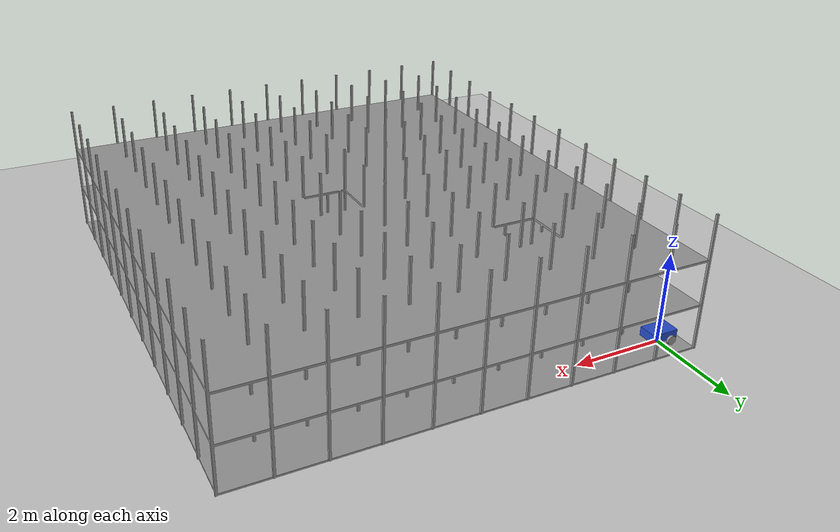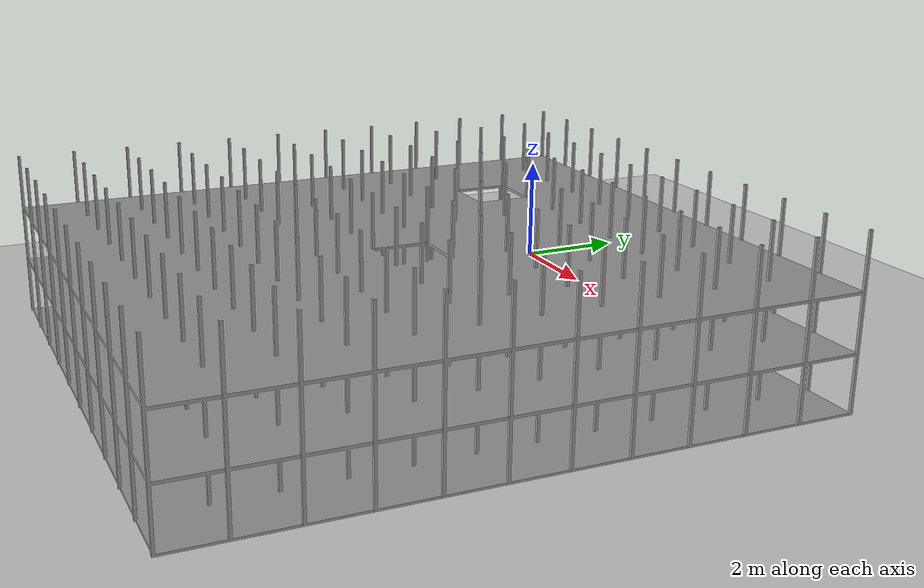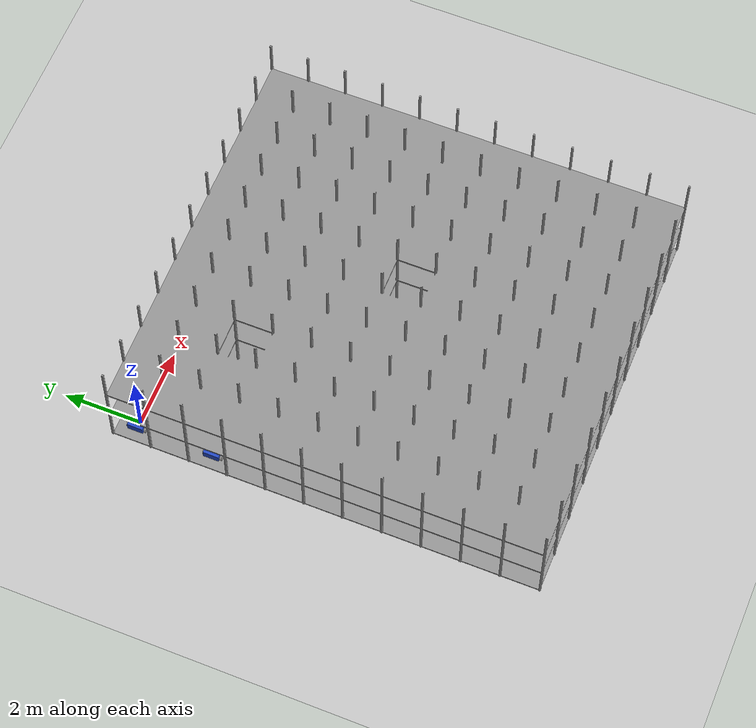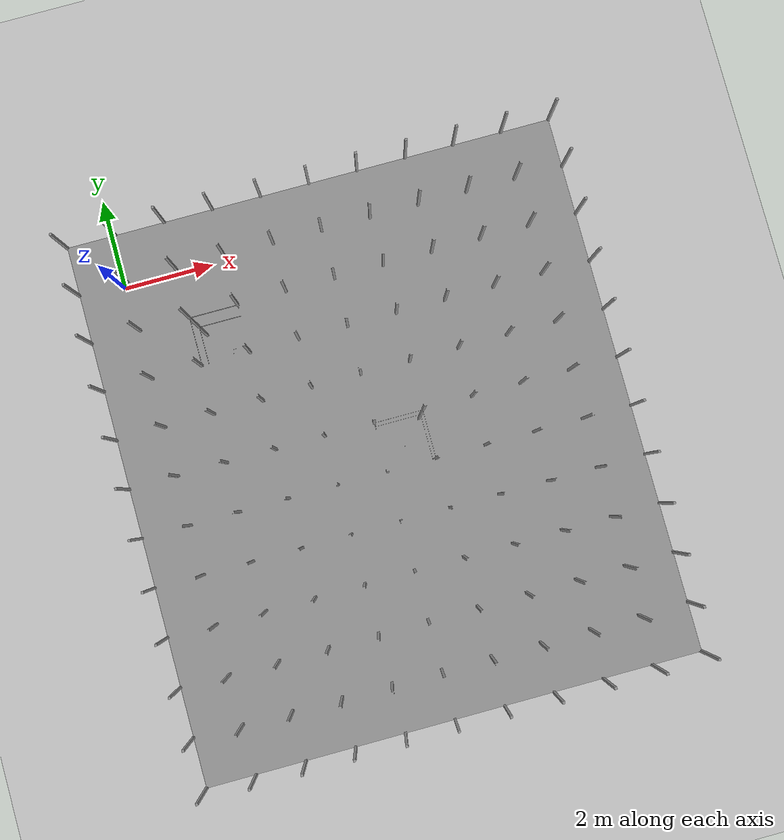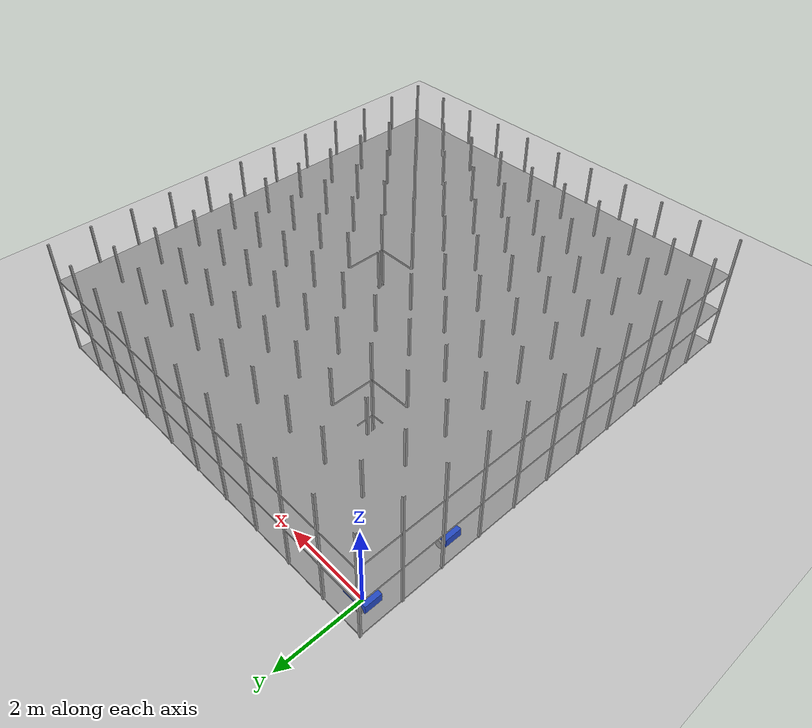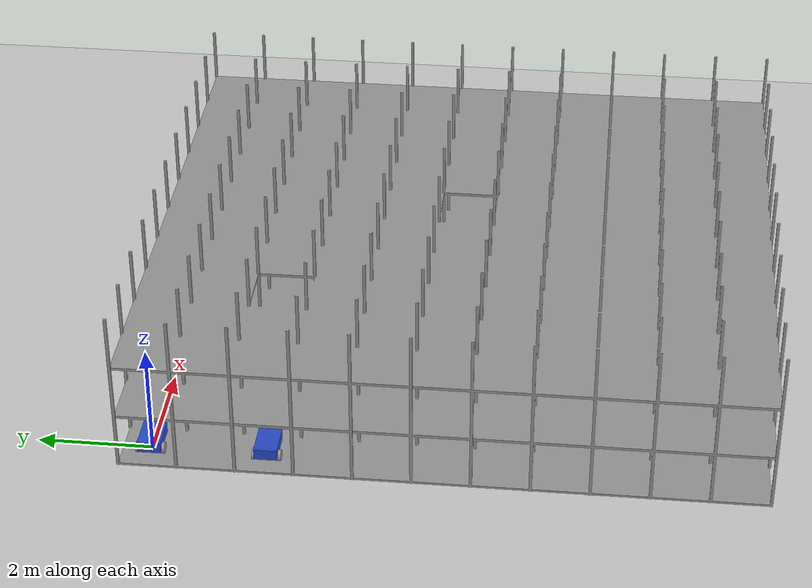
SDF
<sdf version="1.7">
 <world name="default">
  <plugin name="gazebo_ros_state" filename="libgazebo_ros_state.so"><update_rate>1.0</update_rate></plugin>
  <light name="sun" type="directional">
   <pose>0 0 10 0 -0 0</pose>
   <diffuse>0.8 0.8 0.8 1</diffuse>
   <specular>0.2 0.2 0.2 1</specular>
   <attenuation>
    <range>1000</range>
    <constant>0.9</constant>
    <linear>0.01</linear>
    <quadratic>0.001</quadratic>
   </attenuation>
   <direction>-0.5 0.1 -0.9</direction>
   <spot><inner_angle>0</inner_angle><outer_angle>0</outer_angle><falloff>0</falloff></spot>
  </light>
  <model name="ground_plane">
   <static>1</static>
   <link name="link">
    <collision name="collision">
     <geometry><plane><normal>0 0 1</normal><size>100 100</size></plane></geometry>
     <surface>
      <contact><collide_bitmask>65535</collide_bitmask></contact>
      <friction><ode><mu>100</mu><mu2>50</mu2></ode></friction>
     </surface>
    </collision>
    <visual name="visual">
     <cast_shadows>0</cast_shadows>
     <geometry><plane><normal>0 0 1</normal><size>100 100</size></plane></geometry>
     <material>
      <script><uri>file://media/materials/scripts/gazebo.material</uri><name>Gazebo/Grey</name></script>
     </material>
    </visual>
   </link>
  </model>
  <gravity>0 0 -9.8</gravity>
  <magnetic_field>6e-06 2.3e-05 -4.2e-05</magnetic_field>
  <atmosphere type="adiabatic"/>
  <physics type="ode">
   <max_step_size>0.001</max_step_size>
   <real_time_factor>1</real_time_factor>
   <real_time_update_rate>1000</real_time_update_rate>
  </physics>
  <scene><ambient>0.4 0.4 0.4 1</ambient><background>0.7 0.7 0.7 1</background><shadows>1</shadows></scene>
  <audio><device>default</device></audio>
  <spherical_coordinates>
   <surface_model>EARTH_WGS84</surface_model>
   <latitude_deg>0</latitude_deg>
   <longitude_deg>0</longitude_deg>
   <elevation>0</elevation>
   <heading_deg>0</heading_deg>
  </spherical_coordinates>
  <model name="ASRS">
   <link name="link_0">
    <inertial>
     <mass>1</mass>
     <inertia>
      <ixx>0.166667</ixx>
      <ixy>0</ixy>
      <ixz>0</ixz>
      <iyy>0.166667</iyy>
      <iyz>0</iyz>
      <izz>0.166667</izz>
     </inertia>
    </inertial>
    <visual name="visual">
     <geometry>
      <mesh><uri>/home/roswsl/pil_ws/src/my_robot_bringup/worlds/world2.dae</uri><scale>1 1 1</scale></mesh>
     </geometry>
     <material>
      <lighting>1</lighting>
      <script><uri>file://media/materials/scripts/gazebo.material</uri><name>Gazebo/Grey</name></script>
      <shader type="pixel"/>
     </material>
    </visual>
    <collision name="collision">
     <geometry>
      <mesh><uri>/home/roswsl/pil_ws/src/my_robot_bringup/worlds/world2.dae</uri><scale>1 1 1</scale></mesh>
     </geometry>
     <surface>
      <friction>
       <ode><mu>1</mu><mu2>1</mu2><fdir1>0 0 0</fdir1><slip1>0</slip1><slip2>0</slip2></ode>
       <torsional>
        <coefficient>1</coefficient>
        <patch_radius>0</patch_radius>
        <surface_radius>0</surface_radius>
        <use_patch_radius>1</use_patch_radius>
        <ode><slip>0</slip></ode>
       </torsional>
      </friction>
      <bounce><restitution_coefficient>0</restitution_coefficient><threshold>1e+06</threshold></bounce>
      <contact>
       <collide_without_contact>0</collide_without_contact>
       <collide_without_contact_bitmask>1</collide_without_contact_bitmask>
       <collide_bitmask>1</collide_bitmask>
       <ode>
        <soft_cfm>0</soft_cfm>
        <soft_erp>0.2</soft_erp>
        <kp>1e+13</kp>
        <kd>1</kd>
        <max_vel>0.01</max_vel>
        <min_depth>0</min_depth>
       </ode>
       <bullet>
        <split_impulse>1</split_impulse>
        <split_impulse_penetration_threshold>-0.01</split_impulse_penetration_threshold>
        <soft_cfm>0</soft_cfm>
        <soft_erp>0.2</soft_erp>
        <kp>1e+13</kp>
        <kd>1</kd>
       </bullet>
      </contact>
     </surface>
    </collision>
   </link>
   <static>1</static>
   <pose>0 -10 0 0 -0 0</pose>
  </model>
  <model name="agent_2">
   <link name="base_footprint">
    <inertial>
     <pose>0.018182 0 0.186364 0 -0 0</pose>
     <mass>5.5</mass>
     <inertia>
      <ixx>0.678894</ixx>
      <ixy>0</ixy>
      <ixz>0.0136364</ixz>
      <iyy>0.897076</iyy>
      <iyz>0</iyz>
      <izz>0.353515</izz>
     </inertia>
    </inertial>
    <collision name="base_footprint_fixed_joint_lump__base_link_collision">
     <pose>0 0 0.2 0 -0 0</pose>
     <geometry><box><size>0.6 0.4 0.2</size></box></geometry>
    </collision>
    <collision name="base_footprint_fixed_joint_lump__caster_wheel_link_collision_1">
     <pose>0.2 0 0.05 0 -0 0</pose>
     <geometry><sphere><radius>0.05</radius></sphere></geometry>
     <surface><friction><ode><mu>0.1</mu><mu2>0.1</mu2></ode></friction></surface>
    </collision>
    <visual name="base_footprint_fixed_joint_lump__base_link_visual">
     <pose>0 0 0.2 0 -0 0</pose>
     <geometry><box><size>0.6 0.4 0.2</size></box></geometry>
     <material>
      <script><name>Gazebo/Blue</name><uri>file://media/materials/scripts/gazebo.material</uri></script>
     </material>
    </visual>
    <visual name="base_footprint_fixed_joint_lump__caster_wheel_link_visual_1">
     <pose>0.2 0 0.05 0 -0 0</pose>
     <geometry><sphere><radius>0.05</radius></sphere></geometry>
     <material>
      <script><name>Gazebo/Grey</name><uri>file://media/materials/scripts/gazebo.material</uri></script>
     </material>
    </visual>
   </link>
   <joint name="base_left_wheel_joint" type="revolute">
    <pose relative_to="base_footprint">-0.15 0.225 0.1 0 -0 0</pose>
    <parent>base_footprint</parent>
    <child>left_wheel_link</child>
    <axis>
     <xyz>0 1 0</xyz>
     <limit><lower>-1e+16</lower><upper>1e+16</upper></limit>
     <dynamics><spring_reference>0</spring_reference><spring_stiffness>0</spring_stiffness></dynamics>
    </axis>
   </joint>
   <link name="left_wheel_link">
    <pose relative_to="base_left_wheel_joint">0 0 0 0 -0 0</pose>
    <inertial>
     <pose>0 0 0 1.5708 -0 0</pose>
     <mass>1</mass>
     <inertia><ixx>0.0108333</ixx><ixy>0</ixy><ixz>0</ixz><iyy>0.0108333</iyy><iyz>0</iyz><izz>0.02</izz></inertia>
    </inertial>
    <collision name="left_wheel_link_collision">
     <pose>0 0 0 1.5708 -0 0</pose>
     <geometry><cylinder><length>0.05</length><radius>0.1</radius></cylinder></geometry>
    </collision>
    <visual name="left_wheel_link_visual">
     <pose>0 0 0 1.5708 -0 0</pose>
     <geometry><cylinder><length>0.05</length><radius>0.1</radius></cylinder></geometry>
     <material>
      <script><name>Gazebo/Grey</name><uri>file://media/materials/scripts/gazebo.material</uri></script>
     </material>
    </visual>
   </link>
   <joint name="base_right_wheel_joint" type="revolute">
    <pose relative_to="base_footprint">-0.15 -0.225 0.1 0 -0 0</pose>
    <parent>base_footprint</parent>
    <child>right_wheel_link</child>
    <axis>
     <xyz>0 1 0</xyz>
     <limit><lower>-1e+16</lower><upper>1e+16</upper></limit>
     <dynamics><spring_reference>0</spring_reference><spring_stiffness>0</spring_stiffness></dynamics>
    </axis>
   </joint>
   <link name="right_wheel_link">
    <pose relative_to="base_right_wheel_joint">0 0 0 0 -0 0</pose>
    <inertial>
     <pose>0 0 0 1.5708 -0 0</pose>
     <mass>1</mass>
     <inertia><ixx>0.0108333</ixx><ixy>0</ixy><ixz>0</ixz><iyy>0.0108333</iyy><iyz>0</iyz><izz>0.02</izz></inertia>
    </inertial>
    <collision name="right_wheel_link_collision">
     <pose>0 0 0 1.5708 -0 0</pose>
     <geometry><cylinder><length>0.05</length><radius>0.1</radius></cylinder></geometry>
    </collision>
    <visual name="right_wheel_link_visual">
     <pose>0 0 0 1.5708 -0 0</pose>
     <geometry><cylinder><length>0.05</length><radius>0.1</radius></cylinder></geometry>
     <material>
      <script><name>Gazebo/Grey</name><uri>file://media/materials/scripts/gazebo.material</uri></script>
     </material>
    </visual>
   </link>
   <static>0</static>
   <plugin name="diff_drive_controller" filename="libgazebo_ros_diff_drive.so">
    <update_rate>50</update_rate>
    <left_joint>base_left_wheel_joint</left_joint>
    <right_joint>base_right_wheel_joint</right_joint>
    <wheel_separation>0.45</wheel_separation>
    <wheel_diameter>0.2</wheel_diameter>
    <publish_odom>1</publish_odom>
    <publish_odom_tf>1</publish_odom_tf>
    <publish_wheel_tf>1</publish_wheel_tf>
    <odometry_topic>odom</odometry_topic>
    <odometry_frame>odom</odometry_frame>
    <robot_base_frame>base_footprint</robot_base_frame>
    <ros><namespace>agent_2</namespace></ros>
   </plugin>
   <pose>1.2e-05 -1.99962 0.025 0 0 -0.002009</pose>
  </model>
  <model name="agent_1">
   <link name="base_footprint">
    <inertial>
     <pose>0.018182 0 0.186364 0 -0 0</pose>
     <mass>5.5</mass>
     <inertia>
      <ixx>0.678894</ixx>
      <ixy>0</ixy>
      <ixz>0.0136364</ixz>
      <iyy>0.897076</iyy>
      <iyz>0</iyz>
      <izz>0.353515</izz>
     </inertia>
    </inertial>
    <collision name="base_footprint_fixed_joint_lump__base_link_collision">
     <pose>0 0 0.2 0 -0 0</pose>
     <geometry><box><size>0.6 0.4 0.2</size></box></geometry>
    </collision>
    <collision name="base_footprint_fixed_joint_lump__caster_wheel_link_collision_1">
     <pose>0.2 0 0.05 0 -0 0</pose>
     <geometry><sphere><radius>0.05</radius></sphere></geometry>
     <surface><friction><ode><mu>0.1</mu><mu2>0.1</mu2></ode></friction></surface>
    </collision>
    <visual name="base_footprint_fixed_joint_lump__base_link_visual">
     <pose>0 0 0.2 0 -0 0</pose>
     <geometry><box><size>0.6 0.4 0.2</size></box></geometry>
     <material>
      <script><name>Gazebo/Blue</name><uri>file://media/materials/scripts/gazebo.material</uri></script>
     </material>
    </visual>
    <visual name="base_footprint_fixed_joint_lump__caster_wheel_link_visual_1">
     <pose>0.2 0 0.05 0 -0 0</pose>
     <geometry><sphere><radius>0.05</radius></sphere></geometry>
     <material>
      <script><name>Gazebo/Grey</name><uri>file://media/materials/scripts/gazebo.material</uri></script>
     </material>
    </visual>
   </link>
   <joint name="base_left_wheel_joint" type="revolute">
    <pose relative_to="base_footprint">-0.15 0.225 0.1 0 -0 0</pose>
    <parent>base_footprint</parent>
    <child>left_wheel_link</child>
    <axis>
     <xyz>0 1 0</xyz>
     <limit><lower>-1e+16</lower><upper>1e+16</upper></limit>
     <dynamics><spring_reference>0</spring_reference><spring_stiffness>0</spring_stiffness></dynamics>
    </axis>
   </joint>
   <link name="left_wheel_link">
    <pose relative_to="base_left_wheel_joint">0 0 0 0 -0 0</pose>
    <inertial>
     <pose>0 0 0 1.5708 -0 0</pose>
     <mass>1</mass>
     <inertia><ixx>0.0108333</ixx><ixy>0</ixy><ixz>0</ixz><iyy>0.0108333</iyy><iyz>0</iyz><izz>0.02</izz></inertia>
    </inertial>
    <collision name="left_wheel_link_collision">
     <pose>0 0 0 1.5708 -0 0</pose>
     <geometry><cylinder><length>0.05</length><radius>0.1</radius></cylinder></geometry>
    </collision>
    <visual name="left_wheel_link_visual">
     <pose>0 0 0 1.5708 -0 0</pose>
     <geometry><cylinder><length>0.05</length><radius>0.1</radius></cylinder></geometry>
     <material>
      <script><name>Gazebo/Grey</name><uri>file://media/materials/scripts/gazebo.material</uri></script>
     </material>
    </visual>
   </link>
   <joint name="base_right_wheel_joint" type="revolute">
    <pose relative_to="base_footprint">-0.15 -0.225 0.1 0 -0 0</pose>
    <parent>base_footprint</parent>
    <child>right_wheel_link</child>
    <axis>
     <xyz>0 1 0</xyz>
     <limit><lower>-1e+16</lower><upper>1e+16</upper></limit>
     <dynamics><spring_reference>0</spring_reference><spring_stiffness>0</spring_stiffness></dynamics>
    </axis>
   </joint>
   <link name="right_wheel_link">
    <pose relative_to="base_right_wheel_joint">0 0 0 0 -0 0</pose>
    <inertial>
     <pose>0 0 0 1.5708 -0 0</pose>
     <mass>1</mass>
     <inertia><ixx>0.0108333</ixx><ixy>0</ixy><ixz>0</ixz><iyy>0.0108333</iyy><iyz>0</iyz><izz>0.02</izz></inertia>
    </inertial>
    <collision name="right_wheel_link_collision">
     <pose>0 0 0 1.5708 -0 0</pose>
     <geometry><cylinder><length>0.05</length><radius>0.1</radius></cylinder></geometry>
    </collision>
    <visual name="right_wheel_link_visual">
     <pose>0 0 0 1.5708 -0 0</pose>
     <geometry><cylinder><length>0.05</length><radius>0.1</radius></cylinder></geometry>
     <material>
      <script><name>Gazebo/Grey</name><uri>file://media/materials/scripts/gazebo.material</uri></script>
     </material>
    </visual>
   </link>
   <static>0</static>
   <plugin name="diff_drive_controller" filename="libgazebo_ros_diff_drive.so">
    <update_rate>50</update_rate>
    <left_joint>base_left_wheel_joint</left_joint>
    <right_joint>base_right_wheel_joint</right_joint>
    <wheel_separation>0.45</wheel_separation>
    <wheel_diameter>0.2</wheel_diameter>
    <publish_odom>1</publish_odom>
    <publish_odom_tf>1</publish_odom_tf>
    <publish_wheel_tf>1</publish_wheel_tf>
    <odometry_topic>odom</odometry_topic>
    <odometry_frame>odom</odometry_frame>
    <robot_base_frame>base_footprint</robot_base_frame>
    <ros><namespace>agent_1</namespace></ros>
   </plugin>
   <pose>1.9e-05 0.000564 0.025 0 0 -0.003018</pose>
  </model>
 </world>
</sdf>
